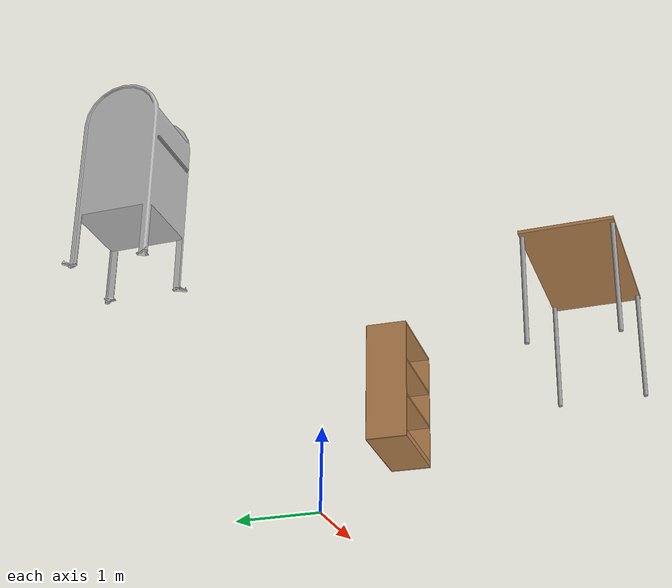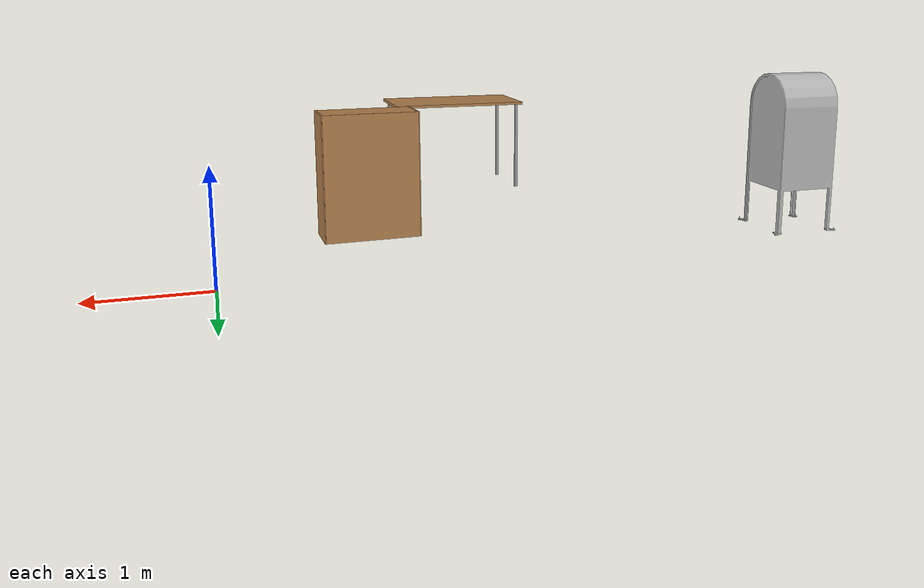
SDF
<?xml version='1.0'?>
<sdf version='1.7'>
  <model name='building3'>
    <model name='bookshelf'>
      <static>1</static>
      <link name='link'>
        <inertial>
          <mass>1</mass>
        </inertial>
        <collision name='back'>
          <pose>0 0.005 0.6 0 -0 0</pose>
          <geometry>
            <box>
              <size>0.9 0.01 1.2</size>
            </box>
          </geometry>
          <max_contacts>10</max_contacts>
          <surface>
            <contact>
              <ode/>
            </contact>
            <bounce/>
            <friction>
              <torsional>
                <ode/>
              </torsional>
              <ode/>
            </friction>
          </surface>
        </collision>
        <visual name='visual1'>
          <pose>0 0.005 0.6 0 -0 0</pose>
          <geometry>
            <box>
              <size>0.9 0.01 1.2</size>
            </box>
          </geometry>
          <material>
            <script>
              <uri>file://media/materials/scripts/gazebo.material</uri>
              <name>Gazebo/Wood</name>
            </script>
          </material>
        </visual>
        <collision name='left_side'>
          <pose>0.45 -0.195 0.6 0 -0 0</pose>
          <geometry>
            <box>
              <size>0.02 0.4 1.2</size>
            </box>
          </geometry>
          <max_contacts>10</max_contacts>
          <surface>
            <contact>
              <ode/>
            </contact>
            <bounce/>
            <friction>
              <torsional>
                <ode/>
              </torsional>
              <ode/>
            </friction>
          </surface>
        </collision>
        <visual name='visual2'>
          <pose>0.45 -0.195 0.6 0 -0 0</pose>
          <geometry>
            <box>
              <size>0.02 0.4 1.2</size>
            </box>
          </geometry>
          <material>
            <script>
              <uri>file://media/materials/scripts/gazebo.material</uri>
              <name>Gazebo/Wood</name>
            </script>
          </material>
        </visual>
        <collision name='right_side'>
          <pose>-0.45 -0.195 0.6 0 -0 0</pose>
          <geometry>
            <box>
              <size>0.02 0.4 1.2</size>
            </box>
          </geometry>
          <max_contacts>10</max_contacts>
          <surface>
            <contact>
              <ode/>
            </contact>
            <bounce/>
            <friction>
              <torsional>
                <ode/>
              </torsional>
              <ode/>
            </friction>
          </surface>
        </collision>
        <visual name='visual3'>
          <pose>-0.45 -0.195 0.6 0 -0 0</pose>
          <geometry>
            <box>
              <size>0.02 0.4 1.2</size>
            </box>
          </geometry>
          <material>
            <script>
              <uri>file://media/materials/scripts/gazebo.material</uri>
              <name>Gazebo/Wood</name>
            </script>
          </material>
        </visual>
        <collision name='bottom'>
          <pose>0 -0.195 0.03 0 -0 0</pose>
          <geometry>
            <box>
              <size>0.88 0.4 0.06</size>
            </box>
          </geometry>
          <max_contacts>10</max_contacts>
          <surface>
            <contact>
              <ode/>
            </contact>
            <bounce/>
            <friction>
              <torsional>
                <ode/>
              </torsional>
              <ode/>
            </friction>
          </surface>
        </collision>
        <visual name='visual4'>
          <pose>0 -0.195 0.03 0 -0 0</pose>
          <geometry>
            <box>
              <size>0.88 0.4 0.06</size>
            </box>
          </geometry>
          <material>
            <script>
              <uri>file://media/materials/scripts/gazebo.material</uri>
              <name>Gazebo/Wood</name>
            </script>
          </material>
        </visual>
        <collision name='top'>
          <pose>0 -0.195 1.19 0 -0 0</pose>
          <geometry>
            <box>
              <size>0.88 0.4 0.02</size>
            </box>
          </geometry>
          <max_contacts>10</max_contacts>
          <surface>
            <contact>
              <ode/>
            </contact>
            <bounce/>
            <friction>
              <torsional>
                <ode/>
              </torsional>
              <ode/>
            </friction>
          </surface>
        </collision>
        <visual name='visual5'>
          <pose>0 -0.195 1.19 0 -0 0</pose>
          <geometry>
            <box>
              <size>0.88 0.4 0.02</size>
            </box>
          </geometry>
          <material>
            <script>
              <uri>file://media/materials/scripts/gazebo.material</uri>
              <name>Gazebo/Wood</name>
            </script>
          </material>
        </visual>
        <collision name='low_shelf'>
          <pose>0 -0.195 0.43 0 -0 0</pose>
          <geometry>
            <box>
              <size>0.88 0.4 0.02</size>
            </box>
          </geometry>
          <max_contacts>10</max_contacts>
          <surface>
            <contact>
              <ode/>
            </contact>
            <bounce/>
            <friction>
              <torsional>
                <ode/>
              </torsional>
              <ode/>
            </friction>
          </surface>
        </collision>
        <visual name='visual6'>
          <pose>0 -0.195 0.43 0 -0 0</pose>
          <geometry>
            <box>
              <size>0.88 0.4 0.02</size>
            </box>
          </geometry>
          <material>
            <script>
              <uri>file://media/materials/scripts/gazebo.material</uri>
              <name>Gazebo/Wood</name>
            </script>
          </material>
        </visual>
        <collision name='high_shelf'>
          <pose>0 -0.195 0.8 0 -0 0</pose>
          <geometry>
            <box>
              <size>0.88 0.4 0.02</size>
            </box>
          </geometry>
          <max_contacts>10</max_contacts>
          <surface>
            <contact>
              <ode/>
            </contact>
            <bounce/>
            <friction>
              <torsional>
                <ode/>
              </torsional>
              <ode/>
            </friction>
          </surface>
        </collision>
        <visual name='visual7'>
          <pose>0 -0.195 0.8 0 -0 0</pose>
          <geometry>
            <box>
              <size>0.88 0.4 0.02</size>
            </box>
          </geometry>
          <material>
            <script>
              <uri>file://media/materials/scripts/gazebo.material</uri>
              <name>Gazebo/Wood</name>
            </script>
          </material>
        </visual>
        <self_collide>0</self_collide>
        <enable_wind>0</enable_wind>
        <kinematic>0</kinematic>
      </link>
      <pose>-1.44003 -1.15117 0.001167 0 -0 0.033302</pose>
    </model>
    <model name='postbox'>
      <static>1</static>
      <link name='link'>
        <collision name='collision'>
          <geometry>
            <mesh>
              <uri>model://postbox/meshes/postbox.dae</uri>
            </mesh>
          </geometry>
          <max_contacts>10</max_contacts>
          <surface>
            <contact>
              <ode/>
            </contact>
            <bounce/>
            <friction>
              <torsional>
                <ode/>
              </torsional>
              <ode/>
            </friction>
          </surface>
        </collision>
        <visual name='visual'>
          <geometry>
            <mesh>
              <uri>model://postbox/meshes/postbox.dae</uri>
            </mesh>
          </geometry>
        </visual>
        <self_collide>0</self_collide>
        <enable_wind>0</enable_wind>
        <kinematic>0</kinematic>
      </link>
      <pose>-5.4858 -0.515503 0 0 -0 0</pose>
    </model>
    <model name='table'>
      <static>1</static>
      <link name='link'>
        <collision name='surface'>
          <pose>0 0 1 0 -0 0</pose>
          <geometry>
            <box>
              <size>1.5 0.8 0.03</size>
            </box>
          </geometry>
          <surface>
            <friction>
              <ode>
                <mu>0.6</mu>
                <mu2>0.6</mu2>
              </ode>
              <torsional>
                <ode/>
              </torsional>
            </friction>
            <contact>
              <ode/>
            </contact>
            <bounce/>
          </surface>
          <max_contacts>10</max_contacts>
        </collision>
        <visual name='visual1'>
          <pose>0 0 1 0 -0 0</pose>
          <geometry>
            <box>
              <size>1.5 0.8 0.03</size>
            </box>
          </geometry>
          <material>
            <script>
              <uri>file://media/materials/scripts/gazebo.material</uri>
              <name>Gazebo/Wood</name>
            </script>
          </material>
        </visual>
        <collision name='front_left_leg'>
          <pose>0.68 0.38 0.5 0 -0 0</pose>
          <geometry>
            <cylinder>
              <radius>0.02</radius>
              <length>1</length>
            </cylinder>
          </geometry>
          <max_contacts>10</max_contacts>
          <surface>
            <contact>
              <ode/>
            </contact>
            <bounce/>
            <friction>
              <torsional>
                <ode/>
              </torsional>
              <ode/>
            </friction>
          </surface>
        </collision>
        <visual name='front_left_leg'>
          <pose>0.68 0.38 0.5 0 -0 0</pose>
          <geometry>
            <cylinder>
              <radius>0.02</radius>
              <length>1</length>
            </cylinder>
          </geometry>
          <material>
            <script>
              <uri>file://media/materials/scripts/gazebo.material</uri>
              <name>Gazebo/Grey</name>
            </script>
          </material>
        </visual>
        <collision name='front_right_leg'>
          <pose>0.68 -0.38 0.5 0 -0 0</pose>
          <geometry>
            <cylinder>
              <radius>0.02</radius>
              <length>1</length>
            </cylinder>
          </geometry>
          <max_contacts>10</max_contacts>
          <surface>
            <contact>
              <ode/>
            </contact>
            <bounce/>
            <friction>
              <torsional>
                <ode/>
              </torsional>
              <ode/>
            </friction>
          </surface>
        </collision>
        <visual name='front_right_leg'>
          <pose>0.68 -0.38 0.5 0 -0 0</pose>
          <geometry>
            <cylinder>
              <radius>0.02</radius>
              <length>1</length>
            </cylinder>
          </geometry>
          <material>
            <script>
              <uri>file://media/materials/scripts/gazebo.material</uri>
              <name>Gazebo/Grey</name>
            </script>
          </material>
        </visual>
        <collision name='back_right_leg'>
          <pose>-0.68 -0.38 0.5 0 -0 0</pose>
          <geometry>
            <cylinder>
              <radius>0.02</radius>
              <length>1</length>
            </cylinder>
          </geometry>
          <max_contacts>10</max_contacts>
          <surface>
            <contact>
              <ode/>
            </contact>
            <bounce/>
            <friction>
              <torsional>
                <ode/>
              </torsional>
              <ode/>
            </friction>
          </surface>
        </collision>
        <visual name='back_right_leg'>
          <pose>-0.68 -0.38 0.5 0 -0 0</pose>
          <geometry>
            <cylinder>
              <radius>0.02</radius>
              <length>1</length>
            </cylinder>
          </geometry>
          <material>
            <script>
              <uri>file://media/materials/scripts/gazebo.material</uri>
              <name>Gazebo/Grey</name>
            </script>
          </material>
        </visual>
        <collision name='back_left_leg'>
          <pose>-0.68 0.38 0.5 0 -0 0</pose>
          <geometry>
            <cylinder>
              <radius>0.02</radius>
              <length>1</length>
            </cylinder>
          </geometry>
          <max_contacts>10</max_contacts>
          <surface>
            <contact>
              <ode/>
            </contact>
            <bounce/>
            <friction>
              <torsional>
                <ode/>
              </torsional>
              <ode/>
            </friction>
          </surface>
        </collision>
        <visual name='back_left_leg'>
          <pose>-0.68 0.38 0.5 0 -0 0</pose>
          <geometry>
            <cylinder>
              <radius>0.02</radius>
              <length>1</length>
            </cylinder>
          </geometry>
          <material>
            <script>
              <uri>file://media/materials/scripts/gazebo.material</uri>
              <name>Gazebo/Grey</name>
            </script>
          </material>
        </visual>
        <self_collide>0</self_collide>
        <enable_wind>0</enable_wind>
        <kinematic>0</kinematic>
      </link>
      <pose>-2.80046 -3.45312 0 0 -0 0</pose>
    </model>
    <static>0</static>
    <allow_auto_disable>1</allow_auto_disable>
  </model>
</sdf>
